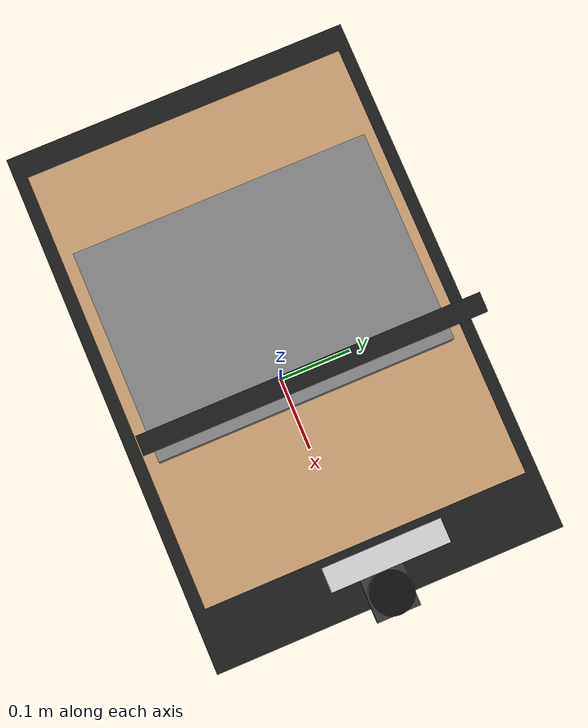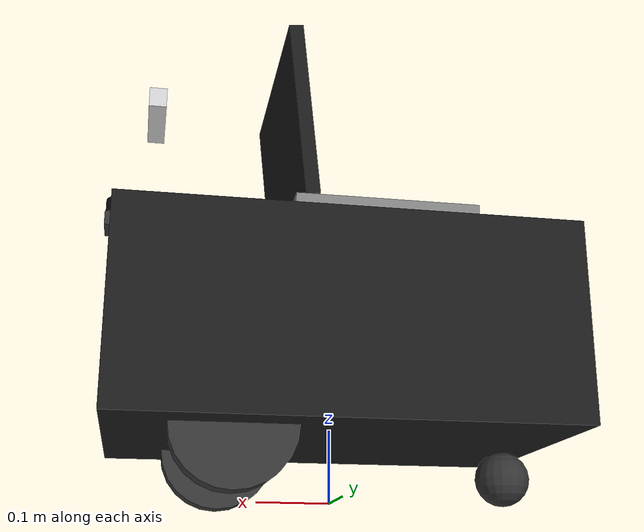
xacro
<?xml version="1.0"?>
<robot name="udh1" xmlns:xacro="http://ros.org/wiki/xacro">

  <link name="base_footprint"/>

  <joint name="base_footprint_joint" type="fixed">
    <parent link="base_footprint"/>
    <child link="base_link"/>
    <origin xyz="0 0 0.0825" rpy="0 0 0"/>
  </joint>

  <link name="base_link">
    <visual>
      <origin xyz="0 0 0.1375" rpy="0 0 0"/>
      <geometry><box size="0.62 0.41 0.275"/></geometry>
      <material name="acrilico_preto"><color rgba="0.1 0.1 0.1 0.95"/></material>
    </visual>
    <visual>
      <origin xyz="-0.02 0 0.278" rpy="0 0 0"/>
      <geometry><box size="0.52 0.38 0.006"/></geometry>
      <material name="mdf_madeira"><color rgba="0.76 0.60 0.42 1.0"/></material>
    </visual>
    <collision>
      <origin xyz="0 0 0.1375" rpy="0 0 0"/>
      <geometry><box size="0.62 0.41 0.275"/></geometry>
    </collision>
    <inertial>
      <origin xyz="0 0 0.1375" rpy="0 0 0"/>
      <mass value="5.0"/>
      <inertia ixx="0.1016" ixy="0.0" ixz="0.0"
               iyy="0.1917" iyz="0.0"
               izz="0.2302"/>
    </inertial>
  </link>

  <joint name="left_wheel_joint" type="continuous">
    <parent link="base_link"/>
    <child link="left_wheel"/>
    <origin xyz="0.145 0.125 0.0" rpy="-1.5708 0 0"/>
    <axis xyz="0 0 1"/>
  </joint>

  <link name="left_wheel">
    <visual>
      <geometry><cylinder radius="0.0825" length="0.045"/></geometry>
      <material name="pneu_borracha"><color rgba="0.2 0.2 0.2 1.0"/></material>
    </visual>
    <collision>
      <geometry><cylinder radius="0.0825" length="0.045"/></geometry>
    </collision>
    <inertial>
      <origin xyz="0 0 0" rpy="0 0 0"/>
      <mass value="0.3"/>
      <inertia ixx="0.000561" ixy="0.0" ixz="0.0"
               iyy="0.000561" iyz="0.0"
               izz="0.001021"/>
    </inertial>
  </link>

  <joint name="right_wheel_joint" type="continuous">
    <parent link="base_link"/>
    <child link="right_wheel"/>
    <origin xyz="0.145 -0.125 0.0" rpy="-1.5708 0 0"/>
    <axis xyz="0 0 1"/>
  </joint>

  <link name="right_wheel">
    <visual>
      <geometry><cylinder radius="0.0825" length="0.045"/></geometry>
      <material name="pneu_borracha"><color rgba="0.2 0.2 0.2 1.0"/></material>
    </visual>
    <collision>
      <geometry><cylinder radius="0.0825" length="0.045"/></geometry>
    </collision>
    <inertial>
      <origin xyz="0 0 0" rpy="0 0 0"/>
      <mass value="0.3"/>
      <inertia ixx="0.000561" ixy="0.0" ixz="0.0"
               iyy="0.000561" iyz="0.0"
               izz="0.001021"/>
    </inertial>
  </link>

  <joint name="caster_joint" type="fixed">
    <parent link="base_link"/>
    <child link="caster_wheel"/>
    <origin xyz="-0.25 0 -0.0444" rpy="0 0 0"/>
  </joint>

  <link name="caster_wheel">
    <visual>
      <geometry><sphere radius="0.0381"/></geometry>
      <material name="pneu_borracha"><color rgba="0.2 0.2 0.2 1.0"/></material>
    </visual>
    <collision>
      <geometry><sphere radius="0.0381"/></geometry>
    </collision>
    <inertial>
      <origin xyz="0 0 0" rpy="0 0 0"/>
      <mass value="0.1"/>
      <inertia ixx="0.0000581" ixy="0.0" ixz="0.0"
               iyy="0.0000581" iyz="0.0"
               izz="0.0000581"/>
    </inertial>
  </link>

  <joint name="lidar_joint" type="fixed">
    <parent link="base_link"/>
    <child link="laser_frame"/>
    <origin xyz="0.30 0 0.315" rpy="0 0 3.14159"/>
  </joint>

  <link name="laser_frame">
    <visual>
      <origin xyz="0 0 -0.01" rpy="0 0 0"/>
      <geometry><box size="0.05 0.05 0.02"/></geometry>
      <material name="lidar_base"><color rgba="0.2 0.2 0.2 1.0"/></material>
    </visual>
    <visual>
      <origin xyz="0 0 0.015" rpy="0 0 0"/>
      <geometry><cylinder radius="0.025" length="0.02"/></geometry>
      <material name="lidar_top"><color rgba="0.05 0.05 0.05 1.0"/></material>
    </visual>
    <collision>
      <origin xyz="0 0 0" rpy="0 0 0"/>
      <geometry><box size="0.05 0.05 0.04"/></geometry>
    </collision>
    <inertial>
      <origin xyz="0 0 0" rpy="0 0 0"/>
      <mass value="0.2"/>
      <inertia ixx="0.000100" ixy="0.0" ixz="0.0"
               iyy="0.000100" iyz="0.0"
               izz="0.000100"/>
    </inertial>
  </link>

  <joint name="camera_joint" type="fixed">
    <parent link="base_link"/>
    <child link="camera_link"/>
    <origin xyz="0.26 0 0.48" rpy="0 0 0"/>
  </joint>

  <link name="camera_link">
    <visual>
      <geometry><box size="0.025 0.124 0.029"/></geometry>
      <material name="realsense_prata"><color rgba="0.8 0.8 0.8 1.0"/></material>
    </visual>
    <collision>
      <geometry><box size="0.025 0.124 0.029"/></geometry>
    </collision>
    <inertial>
      <origin xyz="0 0 0" rpy="0 0 0"/>
      <mass value="0.1"/>
      <inertia ixx="0.000050" ixy="0.0" ixz="0.0"
               iyy="0.000050" iyz="0.0"
               izz="0.000050"/>
    </inertial>
  </link>

  <link name="notebook_base_link">
    <visual>
      <geometry><box size="0.25 0.35 0.02"/></geometry>
      <material name="notebook_gray"><color rgba="0.5 0.5 0.5 1.0"/></material>
    </visual>
    <collision>
      <geometry><box size="0.25 0.35 0.02"/></geometry>
    </collision>
    <inertial>
      <origin xyz="0 0 0" rpy="0 0 0"/>
      <mass value="1.5"/>
      <inertia ixx="0.01536" ixy="0.0" ixz="0.0"
               iyy="0.00786" iyz="0.0"
               izz="0.02313"/>
    </inertial>
  </link>

  <joint name="notebook_base_joint" type="fixed">
    <parent link="base_link"/>
    <child link="notebook_base_link"/>
    <origin xyz="-0.05 0.0 0.29" rpy="0 0 3.14159"/>
  </joint>

  <link name="notebook_screen_link">
    <visual>
      <geometry><box size="0.02 0.35 0.25"/></geometry>
      <material name="screen_black"><color rgba="0.1 0.1 0.1 1.0"/></material>
    </visual>
    <collision>
      <geometry><box size="0.02 0.35 0.25"/></geometry>
    </collision>
    <inertial>
      <origin xyz="0 0 0" rpy="0 0 0"/>
      <mass value="0.5"/>
      <inertia ixx="0.00771" ixy="0.0" ixz="0.0"
               iyy="0.00262" iyz="0.0"
               izz="0.00512"/>
    </inertial>
  </link>

  <joint name="notebook_screen_joint" type="fixed">
    <parent link="notebook_base_link"/>
    <child link="notebook_screen_link"/>
    <origin xyz="-0.115 0.0 0.135" rpy="0 -0.1 0"/>
  </joint>

  <!-- Gazebo: apenas materiais, atrito e plugins (sem redeclarar links) -->
  <xacro:include filename="$(find udh1_description)/urdf/udh1.gazebo.xacro"/>

</robot>
